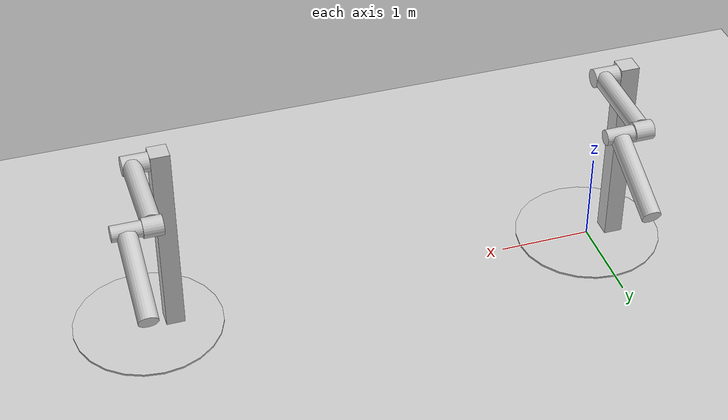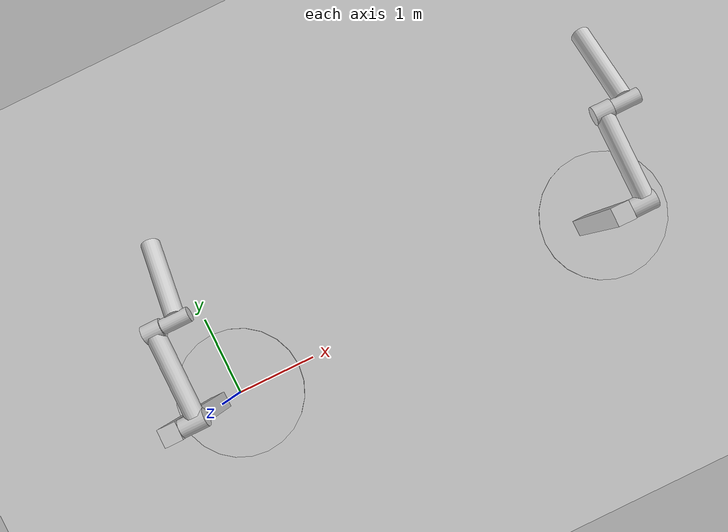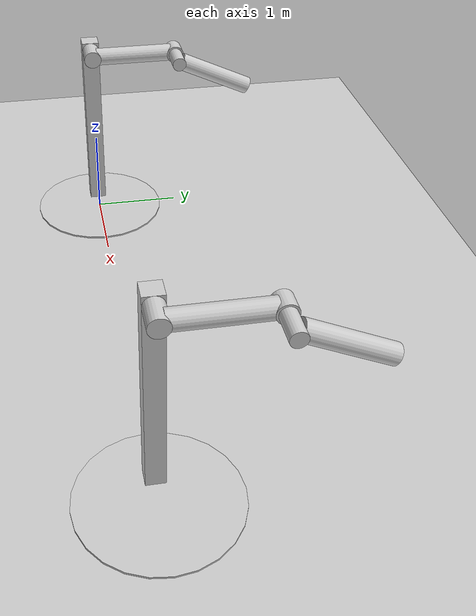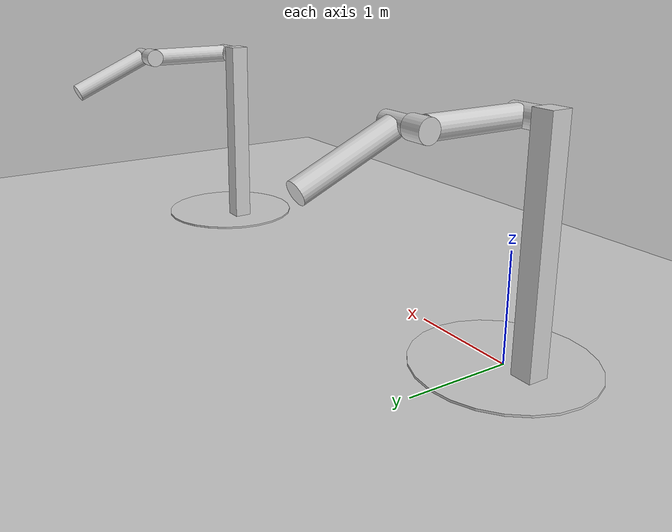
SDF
<?xml version="1.0" ?>
<sdf version="1.6">
  <world name="default">
    <physics name="1ms" type="ode">
      <max_step_size>0.001</max_step_size>
      <real_time_factor>0</real_time_factor>
    </physics>

    <light type="directional" name="sun">
      <cast_shadows>true</cast_shadows>
      <pose>0 0 10 0 0 0</pose>
      <diffuse>0.8 0.8 0.8 1</diffuse>
      <specular>0.2 0.2 0.2 1</specular>
      <attenuation>
        <range>1000</range>
        <constant>0.9</constant>
        <linear>0.01</linear>
        <quadratic>0.001</quadratic>
      </attenuation>
      <direction>-0.5 0.1 -0.9</direction>
    </light>

    <model name="ground_plane">
      <static>true</static>
      <link name="link">
        <collision name="collision">
          <geometry>
            <plane>
              <normal>0 0 1</normal>
              <size>100 100</size>
            </plane>
          </geometry>
        </collision>
        <visual name="visual">
          <geometry>
            <plane>
              <normal>0 0 1</normal>
              <size>100 100</size>
            </plane>
          </geometry>
          <material>
            <ambient>0.8 0.8 0.8 1</ambient>
            <diffuse>0.8 0.8 0.8 1</diffuse>
            <specular>0.8 0.8 0.8 1</specular>
          </material>
        </visual>
      </link>
    </model>

    <model name="double_pendulum_with_base0">
      <pose>0 0 0 0 0 0</pose>
      <link name="base">
        <inertial>
          <mass>100</mass>
        </inertial>
        <visual name="vis_plate_on_ground">
          <pose>0 0 0.01 0 0 0</pose>
          <geometry>
            <cylinder>
              <radius>0.8</radius>
              <length>0.02</length>
            </cylinder>
          </geometry>
          <material>
            <ambient>0.8 0.8 0.8 1</ambient>
            <diffuse>0.8 0.8 0.8 1</diffuse>
            <specular>0.8 0.8 0.8 1</specular>
          </material>
        </visual>
        <visual name="vis_pole">
          <pose>-0.275 0 1.1 0 0 0</pose>
          <geometry>
            <box>
              <size>0.2 0.2 2.2</size>
            </box>
          </geometry>
          <material>
            <ambient>0.8 0.8 0.8 1</ambient>
            <diffuse>0.8 0.8 0.8 1</diffuse>
            <specular>0.8 0.8 0.8 1</specular>
          </material>
        </visual>
        <collision name="col_plate_on_ground">
          <pose>0 0 0.01 0 0 0</pose>
          <geometry>
            <cylinder>
              <radius>0.8</radius>
              <length>0.02</length>
            </cylinder>
          </geometry>
        </collision>
        <collision name="col_pole">
          <pose>-0.275 0 1.1 0 0 0</pose>
          <geometry>
            <box>
              <size>0.2 0.2 2.2</size>
            </box>
          </geometry>
        </collision>
      </link>
      <!-- upper link, length 1, IC -90 degrees -->
      <link name="upper_link">
        <pose>0 0 2.1 -1.5708 0 0</pose>
        <self_collide>0</self_collide>
        <inertial>
          <pose>0 0 0.5 0 0 0</pose>
        </inertial>
        <visual name="vis_upper_joint">
          <pose>-0.05 0 0 0 1.5708 0</pose>
          <geometry>
            <cylinder>
              <radius>0.1</radius>
              <length>0.3</length>
            </cylinder>
          </geometry>
          <material>
            <ambient>0.8 0.8 0.8 1</ambient>
            <diffuse>0.8 0.8 0.8 1</diffuse>
            <specular>0.8 0.8 0.8 1</specular>
          </material>
        </visual>
        <visual name="vis_lower_joint">
          <pose>0 0 1.0 0 1.5708 0</pose>
          <geometry>
            <cylinder>
              <radius>0.1</radius>
              <length>0.2</length>
            </cylinder>
          </geometry>
          <material>
            <ambient>0.8 0.8 0.8 1</ambient>
            <diffuse>0.8 0.8 0.8 1</diffuse>
            <specular>0.8 0.8 0.8 1</specular>
          </material>
        </visual>
        <visual name="vis_cylinder">
          <pose>0 0 0.5 0 0 0</pose>
          <geometry>
            <cylinder>
              <radius>0.1</radius>
              <length>0.9</length>
            </cylinder>
          </geometry>
          <material>
            <ambient>0.8 0.8 0.8 1</ambient>
            <diffuse>0.8 0.8 0.8 1</diffuse>
            <specular>0.8 0.8 0.8 1</specular>
          </material>
        </visual>
        <collision name="col_upper_joint">
          <pose>-0.05 0 0 0 1.5708 0</pose>
          <geometry>
            <cylinder>
              <radius>0.1</radius>
              <length>0.3</length>
            </cylinder>
          </geometry>
        </collision>
        <collision name="col_lower_joint">
          <pose>0 0 1.0 0 1.5708 0</pose>
          <geometry>
            <cylinder>
              <radius>0.1</radius>
              <length>0.2</length>
            </cylinder>
          </geometry>
        </collision>
        <collision name="col_cylinder">
          <pose>0 0 0.5 0 0 0</pose>
          <geometry>
            <cylinder>
              <radius>0.1</radius>
              <length>0.9</length>
            </cylinder>
          </geometry>
        </collision>
      </link>
      <!-- lower link, length 1, IC ~-120 degrees more -->
      <link name="lower_link">
        <pose>0.25 1.0 2.1 -2 0 0</pose>
        <self_collide>0</self_collide>
        <inertial>
          <pose>0 0 0.5 0 0 0</pose>
        </inertial>
        <visual name="vis_lower_joint">
          <pose>0 0 0 0 1.5708 0</pose>
          <geometry>
            <cylinder>
              <radius>0.08</radius>
              <length>0.3</length>
            </cylinder>
          </geometry>
          <material>
            <ambient>0.8 0.8 0.8 1</ambient>
            <diffuse>0.8 0.8 0.8 1</diffuse>
            <specular>0.8 0.8 0.8 1</specular>
          </material>
        </visual>
        <visual name="vis_cylinder">
          <pose>0 0 0.5 0 0 0</pose>
          <geometry>
            <cylinder>
              <radius>0.1</radius>
              <length>0.9</length>
            </cylinder>
          </geometry>
          <material>
            <ambient>0.8 0.8 0.8 1</ambient>
            <diffuse>0.8 0.8 0.8 1</diffuse>
            <specular>0.8 0.8 0.8 1</specular>
          </material>
        </visual>
        <collision name="col_lower_joint">
          <pose>0 0 0 0 1.5708 0</pose>
          <geometry>
            <cylinder>
              <radius>0.08</radius>
              <length>0.3</length>
            </cylinder>
          </geometry>
        </collision>
        <collision name="col_cylinder">
          <pose>0 0 0.5 0 0 0</pose>
          <geometry>
            <cylinder>
              <radius>0.1</radius>
              <length>0.9</length>
            </cylinder>
          </geometry>
        </collision>
      </link>
      <!-- pin joint for upper link, at origin of upper link -->
      <joint name="upper_joint" type="revolute">
        <parent>base</parent>
        <child>upper_link</child>
        <axis>
          <xyz>1.0 0 0</xyz>
        </axis>
      </joint>
      <!-- pin joint for lower link, at origin of child link -->
      <joint name="lower_joint" type="revolute">
        <parent>upper_link</parent>
        <child>lower_link</child>
        <axis>
          <xyz>1.0 0 0</xyz>
        </axis>
      </joint>
    </model>

    <model name="double_pendulum_with_base1">
      <pose>5 0 0 0 0 0</pose>
      <link name="base">
        <inertial>
          <mass>100</mass>
        </inertial>
        <visual name="vis_plate_on_ground">
          <pose>0 0 0.01 0 0 0</pose>
          <geometry>
            <cylinder>
              <radius>0.8</radius>
              <length>0.02</length>
            </cylinder>
          </geometry>
          <material>
            <ambient>0.8 0.8 0.8 1</ambient>
            <diffuse>0.8 0.8 0.8 1</diffuse>
            <specular>0.8 0.8 0.8 1</specular>
          </material>
        </visual>
        <visual name="vis_pole">
          <pose>-0.275 0 1.1 0 0 0</pose>
          <geometry>
            <box>
              <size>0.2 0.2 2.2</size>
            </box>
          </geometry>
          <material>
            <ambient>0.8 0.8 0.8 1</ambient>
            <diffuse>0.8 0.8 0.8 1</diffuse>
            <specular>0.8 0.8 0.8 1</specular>
          </material>
        </visual>
        <collision name="col_plate_on_ground">
          <pose>0 0 0.01 0 0 0</pose>
          <geometry>
            <cylinder>
              <radius>0.8</radius>
              <length>0.02</length>
            </cylinder>
          </geometry>
        </collision>
        <collision name="col_pole">
          <pose>-0.275 0 1.1 0 0 0</pose>
          <geometry>
            <box>
              <size>0.2 0.2 2.2</size>
            </box>
          </geometry>
        </collision>
      </link>
      <!-- upper link, length 1, IC -90 degrees -->
      <link name="upper_link">
        <pose>0 0 2.1 -1.5708 0 0</pose>
        <self_collide>0</self_collide>
        <inertial>
          <pose>0 0 0.5 0 0 0</pose>
        </inertial>
        <visual name="vis_upper_joint">
          <pose>-0.05 0 0 0 1.5708 0</pose>
          <geometry>
            <cylinder>
              <radius>0.1</radius>
              <length>0.3</length>
            </cylinder>
          </geometry>
          <material>
            <ambient>0.8 0.8 0.8 1</ambient>
            <diffuse>0.8 0.8 0.8 1</diffuse>
            <specular>0.8 0.8 0.8 1</specular>
          </material>
        </visual>
        <visual name="vis_lower_joint">
          <pose>0 0 1.0 0 1.5708 0</pose>
          <geometry>
            <cylinder>
              <radius>0.1</radius>
              <length>0.2</length>
            </cylinder>
          </geometry>
          <material>
            <ambient>0.8 0.8 0.8 1</ambient>
            <diffuse>0.8 0.8 0.8 1</diffuse>
            <specular>0.8 0.8 0.8 1</specular>
          </material>
        </visual>
        <visual name="vis_cylinder">
          <pose>0 0 0.5 0 0 0</pose>
          <geometry>
            <cylinder>
              <radius>0.1</radius>
              <length>0.9</length>
            </cylinder>
          </geometry>
          <material>
            <ambient>0.8 0.8 0.8 1</ambient>
            <diffuse>0.8 0.8 0.8 1</diffuse>
            <specular>0.8 0.8 0.8 1</specular>
          </material>
        </visual>
        <collision name="col_upper_joint">
          <pose>-0.05 0 0 0 1.5708 0</pose>
          <geometry>
            <cylinder>
              <radius>0.1</radius>
              <length>0.3</length>
            </cylinder>
          </geometry>
        </collision>
        <collision name="col_lower_joint">
          <pose>0 0 1.0 0 1.5708 0</pose>
          <geometry>
            <cylinder>
              <radius>0.1</radius>
              <length>0.2</length>
            </cylinder>
          </geometry>
        </collision>
        <collision name="col_cylinder">
          <pose>0 0 0.5 0 0 0</pose>
          <geometry>
            <cylinder>
              <radius>0.1</radius>
              <length>0.9</length>
            </cylinder>
          </geometry>
        </collision>
      </link>
      <!-- lower link, length 1, IC ~-120 degrees more -->
      <link name="lower_link">
        <pose>0.25 1.0 2.1 -2 0 0</pose>
        <self_collide>0</self_collide>
        <inertial>
          <pose>0 0 0.5 0 0 0</pose>
        </inertial>
        <visual name="vis_lower_joint">
          <pose>0 0 0 0 1.5708 0</pose>
          <geometry>
            <cylinder>
              <radius>0.08</radius>
              <length>0.3</length>
            </cylinder>
          </geometry>
          <material>
            <ambient>0.8 0.8 0.8 1</ambient>
            <diffuse>0.8 0.8 0.8 1</diffuse>
            <specular>0.8 0.8 0.8 1</specular>
          </material>
        </visual>
        <visual name="vis_cylinder">
          <pose>0 0 0.5 0 0 0</pose>
          <geometry>
            <cylinder>
              <radius>0.1</radius>
              <length>0.9</length>
            </cylinder>
          </geometry>
          <material>
            <ambient>0.8 0.8 0.8 1</ambient>
            <diffuse>0.8 0.8 0.8 1</diffuse>
            <specular>0.8 0.8 0.8 1</specular>
          </material>
        </visual>
        <collision name="col_lower_joint">
          <pose>0 0 0 0 1.5708 0</pose>
          <geometry>
            <cylinder>
              <radius>0.08</radius>
              <length>0.3</length>
            </cylinder>
          </geometry>
        </collision>
        <collision name="col_cylinder">
          <pose>0 0 0.5 0 0 0</pose>
          <geometry>
            <cylinder>
              <radius>0.1</radius>
              <length>0.9</length>
            </cylinder>
          </geometry>
        </collision>
      </link>
      <!-- pin joint for upper link, at origin of upper link -->
      <joint name="upper_joint" type="revolute">
        <parent>base</parent>
        <child>upper_link</child>
        <axis>
          <xyz>1.0 0 0</xyz>
        </axis>
      </joint>
      <!-- pin joint for lower link, at origin of child link -->
      <joint name="lower_joint" type="revolute">
        <parent>upper_link</parent>
        <child>lower_link</child>
        <axis>
          <xyz>1.0 0 0</xyz>
        </axis>
      </joint>
    </model>

  </world>
</sdf>
